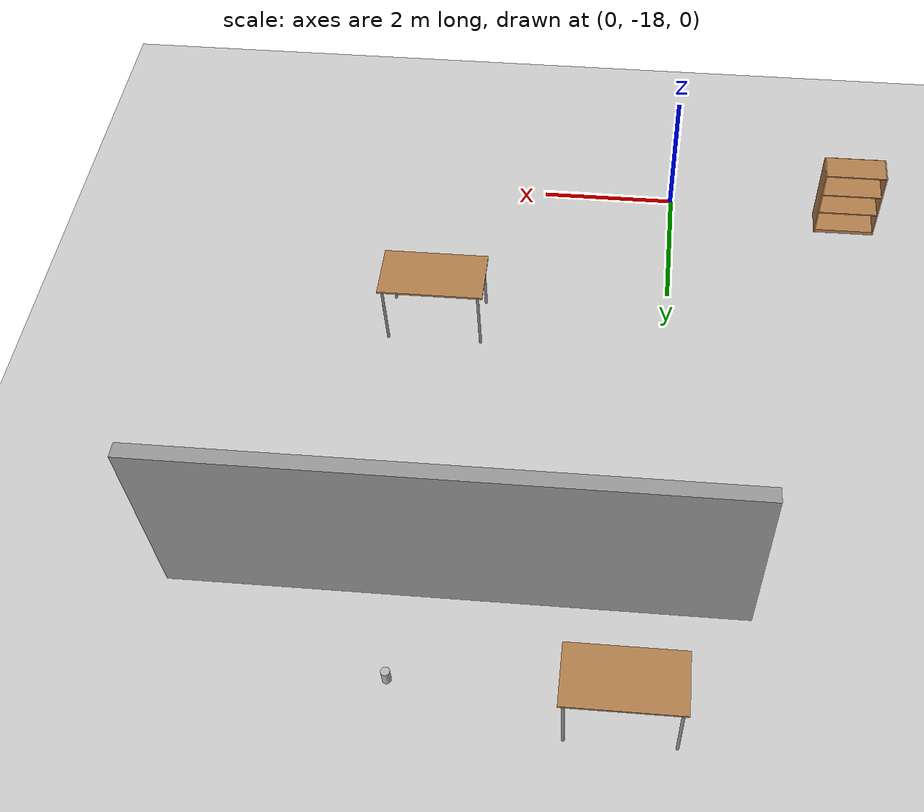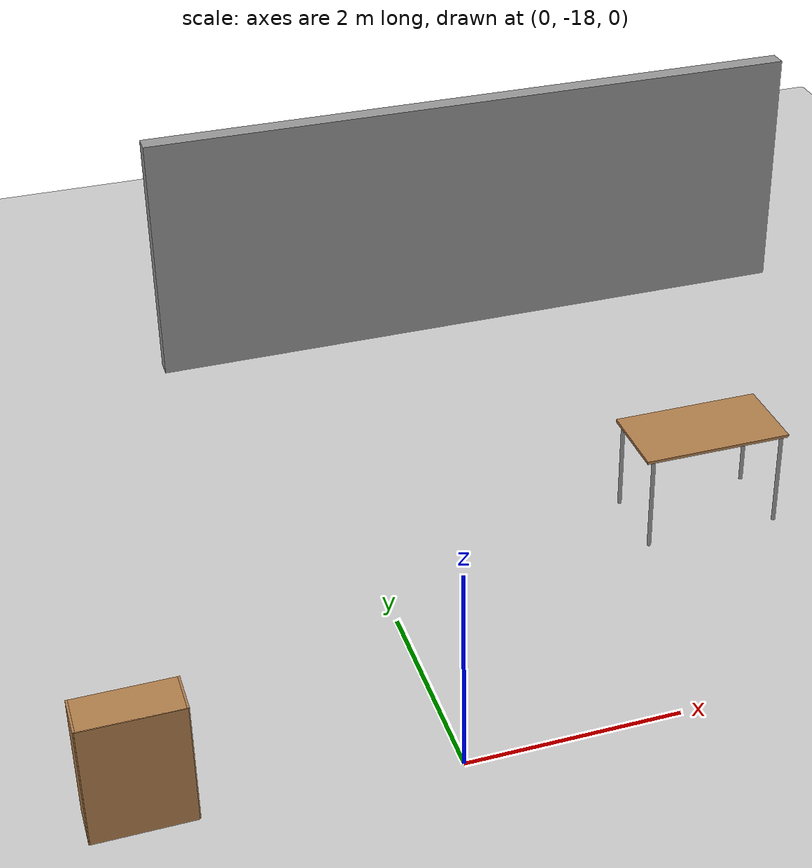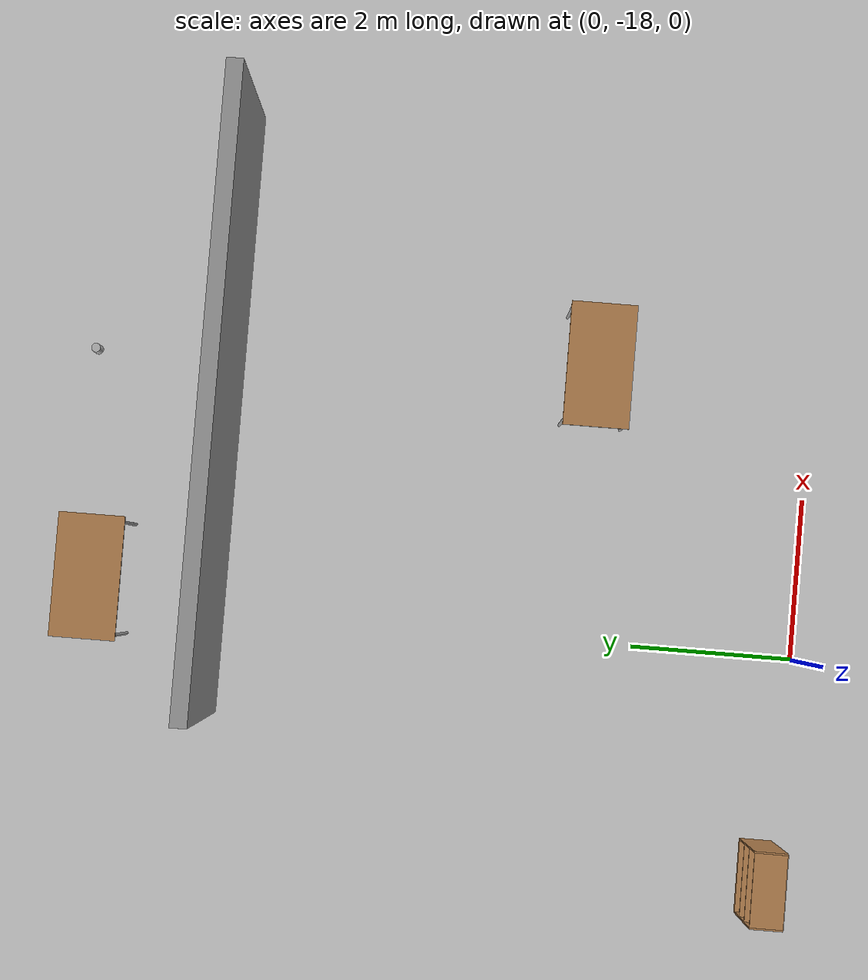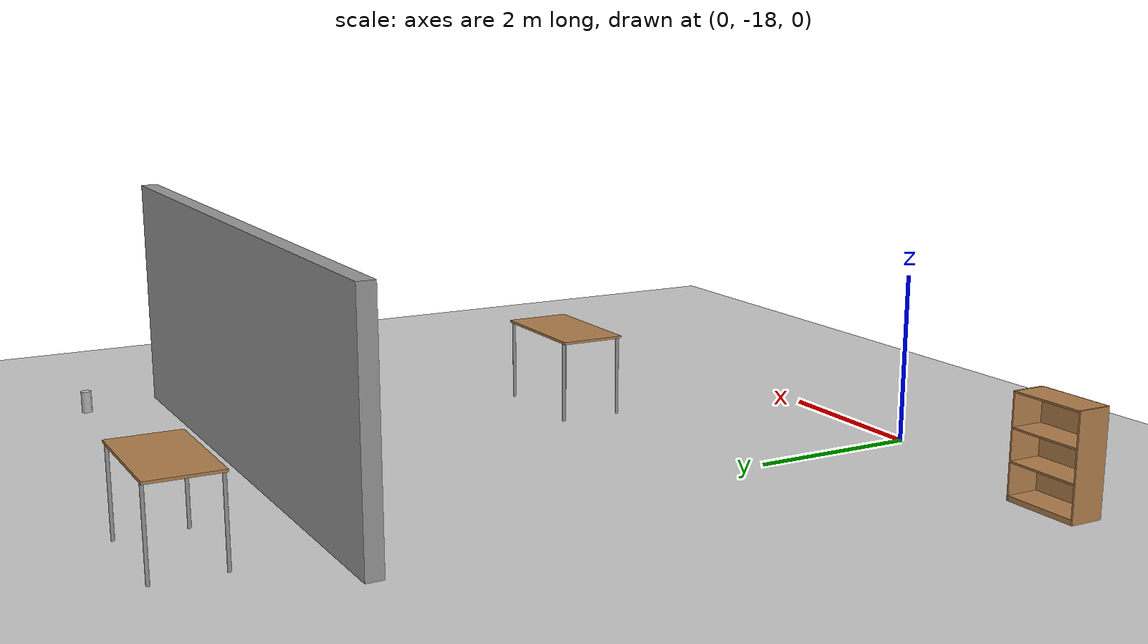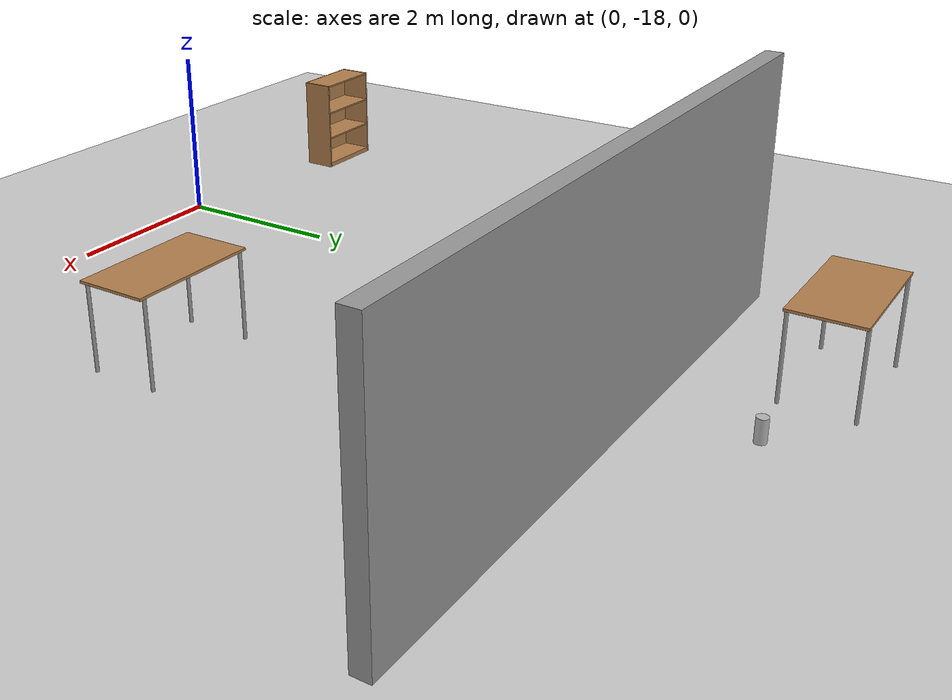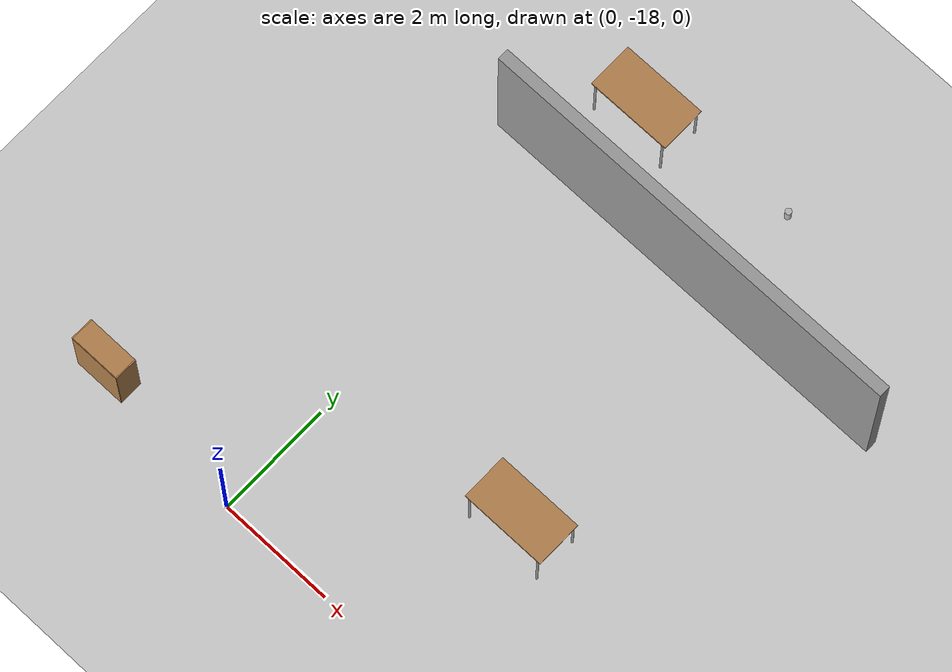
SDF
<sdf version="1.7">
 <world name="default">
  <model name="ground_plane">
   <static>1</static>
   <link name="link">
    <collision name="collision">
     <geometry><plane><normal>0 0 1</normal><size>100 100</size></plane></geometry>
     <surface><friction><ode><mu>100</mu><mu2>50</mu2></ode></friction></surface>
    </collision>
    <visual name="visual">
     <cast_shadows>0</cast_shadows>
     <geometry><plane><normal>0 0 1</normal><size>100 100</size></plane></geometry>
     <material>
      <script><uri>file://media/materials/scripts/gazebo.material</uri><name>Gazebo/Grey</name></script>
     </material>
    </visual>
   </link>
  </model>
  <model name="table">
   <static>1</static>
   <link name="link">
    <collision name="surface">
     <pose>0 0 1 0 -0 0</pose>
     <geometry><box><size>1.5 0.8 0.03</size></box></geometry>
     <surface><friction><ode><mu>0.6</mu><mu2>0.6</mu2></ode></friction></surface>
    </collision>
    <visual name="visual1">
     <pose>0 0 1 0 -0 0</pose>
     <geometry><box><size>1.5 0.8 0.03</size></box></geometry>
     <material>
      <script><uri>file://media/materials/scripts/gazebo.material</uri><name>Gazebo/Wood</name></script>
     </material>
    </visual>
    <collision name="front_left_leg">
     <pose>0.68 0.38 0.5 0 -0 0</pose>
     <geometry><cylinder><radius>0.02</radius><length>1</length></cylinder></geometry>
    </collision>
    <visual name="front_left_leg">
     <pose>0.68 0.38 0.5 0 -0 0</pose>
     <geometry><cylinder><radius>0.02</radius><length>1</length></cylinder></geometry>
     <material>
      <script><uri>file://media/materials/scripts/gazebo.material</uri><name>Gazebo/Grey</name></script>
     </material>
    </visual>
    <collision name="front_right_leg">
     <pose>0.68 -0.38 0.5 0 -0 0</pose>
     <geometry><cylinder><radius>0.02</radius><length>1</length></cylinder></geometry>
    </collision>
    <visual name="front_right_leg">
     <pose>0.68 -0.38 0.5 0 -0 0</pose>
     <geometry><cylinder><radius>0.02</radius><length>1</length></cylinder></geometry>
     <material>
      <script><uri>file://media/materials/scripts/gazebo.material</uri><name>Gazebo/Grey</name></script>
     </material>
    </visual>
    <collision name="back_right_leg">
     <pose>-0.68 -0.38 0.5 0 -0 0</pose>
     <geometry><cylinder><radius>0.02</radius><length>1</length></cylinder></geometry>
    </collision>
    <visual name="back_right_leg">
     <pose>-0.68 -0.38 0.5 0 -0 0</pose>
     <geometry><cylinder><radius>0.02</radius><length>1</length></cylinder></geometry>
     <material>
      <script><uri>file://media/materials/scripts/gazebo.material</uri><name>Gazebo/Grey</name></script>
     </material>
    </visual>
    <collision name="back_left_leg">
     <pose>-0.68 0.38 0.5 0 -0 0</pose>
     <geometry><cylinder><radius>0.02</radius><length>1</length></cylinder></geometry>
    </collision>
    <visual name="back_left_leg">
     <pose>-0.68 0.38 0.5 0 -0 0</pose>
     <geometry><cylinder><radius>0.02</radius><length>1</length></cylinder></geometry>
     <material>
      <script><uri>file://media/materials/scripts/gazebo.material</uri><name>Gazebo/Grey</name></script>
     </material>
    </visual>
   </link>
   <pose>0.349528 -9.32869 0 0 -0 0</pose>
  </model>
  <model name="beer">
   <link name="link">
    <pose>0 0 0.115 0 -0 0</pose>
    <inertial>
     <mass>0.39</mass>
     <inertia><ixx>0.00058</ixx><ixy>0</ixy><ixz>0</ixz><iyy>0.00058</iyy><iyz>0</iyz><izz>0.00019</izz></inertia>
    </inertial>
    <collision name="collision">
     <geometry><cylinder><radius>0.055</radius><length>0.23</length></cylinder></geometry>
    </collision>
    <visual name="visual">
     <geometry><cylinder><radius>0.055</radius><length>0.23</length></cylinder></geometry>
     <material>
      <script>
       <uri>model://beer/materials/scripts</uri>
       <uri>model://beer/materials/textures</uri>
       <name>Beer/Diffuse</name>
      </script>
     </material>
    </visual>
   </link>
   <pose>3.0999 -9.20004 0.775001 2.4e-05 1e-05 0.02904</pose>
  </model>
  <model name="table_1">
   <static>1</static>
   <link name="link">
    <collision name="surface">
     <pose>0 0 1 0 -0 0</pose>
     <geometry><box><size>1.5 0.8 0.03</size></box></geometry>
     <surface><friction><ode><mu>0.6</mu><mu2>0.6</mu2></ode></friction></surface>
    </collision>
    <visual name="visual1">
     <pose>0 0 1 0 -0 0</pose>
     <geometry><box><size>1.5 0.8 0.03</size></box></geometry>
     <material>
      <script><uri>file://media/materials/scripts/gazebo.material</uri><name>Gazebo/Wood</name></script>
     </material>
    </visual>
    <collision name="front_left_leg">
     <pose>0.68 0.38 0.5 0 -0 0</pose>
     <geometry><cylinder><radius>0.02</radius><length>1</length></cylinder></geometry>
    </collision>
    <visual name="front_left_leg">
     <pose>0.68 0.38 0.5 0 -0 0</pose>
     <geometry><cylinder><radius>0.02</radius><length>1</length></cylinder></geometry>
     <material>
      <script><uri>file://media/materials/scripts/gazebo.material</uri><name>Gazebo/Grey</name></script>
     </material>
    </visual>
    <collision name="front_right_leg">
     <pose>0.68 -0.38 0.5 0 -0 0</pose>
     <geometry><cylinder><radius>0.02</radius><length>1</length></cylinder></geometry>
    </collision>
    <visual name="front_right_leg">
     <pose>0.68 -0.38 0.5 0 -0 0</pose>
     <geometry><cylinder><radius>0.02</radius><length>1</length></cylinder></geometry>
     <material>
      <script><uri>file://media/materials/scripts/gazebo.material</uri><name>Gazebo/Grey</name></script>
     </material>
    </visual>
    <collision name="back_right_leg">
     <pose>-0.68 -0.38 0.5 0 -0 0</pose>
     <geometry><cylinder><radius>0.02</radius><length>1</length></cylinder></geometry>
    </collision>
    <visual name="back_right_leg">
     <pose>-0.68 -0.38 0.5 0 -0 0</pose>
     <geometry><cylinder><radius>0.02</radius><length>1</length></cylinder></geometry>
     <material>
      <script><uri>file://media/materials/scripts/gazebo.material</uri><name>Gazebo/Grey</name></script>
     </material>
    </visual>
    <collision name="back_left_leg">
     <pose>-0.68 0.38 0.5 0 -0 0</pose>
     <geometry><cylinder><radius>0.02</radius><length>1</length></cylinder></geometry>
    </collision>
    <visual name="back_left_leg">
     <pose>-0.68 0.38 0.5 0 -0 0</pose>
     <geometry><cylinder><radius>0.02</radius><length>1</length></cylinder></geometry>
     <material>
      <script><uri>file://media/materials/scripts/gazebo.material</uri><name>Gazebo/Grey</name></script>
     </material>
    </visual>
   </link>
   <pose>3.37991 -15.2712 0 0 -0 0</pose>
  </model>
  <model name="grey_wall">
   <static>1</static>
   <link name="link">
    <pose>0 0 1.4 0 -0 0</pose>
    <collision name="collision"><geometry><box><size>7.5 0.2 2.8</size></box></geometry></collision>
    <visual name="visual">
     <cast_shadows>0</cast_shadows>
     <geometry><box><size>7.5 0.2 2.8</size></box></geometry>
     <material>
      <script>
       <uri>model://grey_wall/materials/scripts</uri>
       <uri>model://grey_wall/materials/textures</uri>
       <name>vrc/grey_wall</name>
      </script>
     </material>
    </visual>
   </link>
   <pose>2.52696 -10.7965 0 0 -0 0</pose>
  </model>
  <model name="bookshelf_1">
   <static>1</static>
   <link name="link">
    <inertial><mass>1</mass></inertial>
    <collision name="back">
     <pose>0 0.005 0.6 0 -0 0</pose>
     <geometry><box><size>0.9 0.01 1.2</size></box></geometry>
    </collision>
    <visual name="visual1">
     <pose>0 0.005 0.6 0 -0 0</pose>
     <geometry><box><size>0.9 0.01 1.2</size></box></geometry>
     <material>
      <script><uri>file://media/materials/scripts/gazebo.material</uri><name>Gazebo/Wood</name></script>
     </material>
    </visual>
    <collision name="left_side">
     <pose>0.45 -0.195 0.6 0 -0 0</pose>
     <geometry><box><size>0.02 0.4 1.2</size></box></geometry>
    </collision>
    <visual name="visual2">
     <pose>0.45 -0.195 0.6 0 -0 0</pose>
     <geometry><box><size>0.02 0.4 1.2</size></box></geometry>
     <material>
      <script><uri>file://media/materials/scripts/gazebo.material</uri><name>Gazebo/Wood</name></script>
     </material>
    </visual>
    <collision name="right_side">
     <pose>-0.45 -0.195 0.6 0 -0 0</pose>
     <geometry><box><size>0.02 0.4 1.2</size></box></geometry>
    </collision>
    <visual name="visual3">
     <pose>-0.45 -0.195 0.6 0 -0 0</pose>
     <geometry><box><size>0.02 0.4 1.2</size></box></geometry>
     <material>
      <script><uri>file://media/materials/scripts/gazebo.material</uri><name>Gazebo/Wood</name></script>
     </material>
    </visual>
    <collision name="bottom">
     <pose>0 -0.195 0.03 0 -0 0</pose>
     <geometry><box><size>0.88 0.4 0.06</size></box></geometry>
    </collision>
    <visual name="visual4">
     <pose>0 -0.195 0.03 0 -0 0</pose>
     <geometry><box><size>0.88 0.4 0.06</size></box></geometry>
     <material>
      <script><uri>file://media/materials/scripts/gazebo.material</uri><name>Gazebo/Wood</name></script>
     </material>
    </visual>
    <collision name="top">
     <pose>0 -0.195 1.19 0 -0 0</pose>
     <geometry><box><size>0.88 0.4 0.02</size></box></geometry>
    </collision>
    <visual name="visual5">
     <pose>0 -0.195 1.19 0 -0 0</pose>
     <geometry><box><size>0.88 0.4 0.02</size></box></geometry>
     <material>
      <script><uri>file://media/materials/scripts/gazebo.material</uri><name>Gazebo/Wood</name></script>
     </material>
    </visual>
    <collision name="low_shelf">
     <pose>0 -0.195 0.43 0 -0 0</pose>
     <geometry><box><size>0.88 0.4 0.02</size></box></geometry>
    </collision>
    <visual name="visual6">
     <pose>0 -0.195 0.43 0 -0 0</pose>
     <geometry><box><size>0.88 0.4 0.02</size></box></geometry>
     <material>
      <script><uri>file://media/materials/scripts/gazebo.material</uri><name>Gazebo/Wood</name></script>
     </material>
    </visual>
    <collision name="high_shelf">
     <pose>0 -0.195 0.8 0 -0 0</pose>
     <geometry><box><size>0.88 0.4 0.02</size></box></geometry>
    </collision>
    <visual name="visual7">
     <pose>0 -0.195 0.8 0 -0 0</pose>
     <geometry><box><size>0.88 0.4 0.02</size></box></geometry>
     <material>
      <script><uri>file://media/materials/scripts/gazebo.material</uri><name>Gazebo/Wood</name></script>
     </material>
    </visual>
   </link>
   <pose>-2.71354 -17.9179 0 0 0 -3.14159</pose>
  </model>
 </world>
</sdf>
